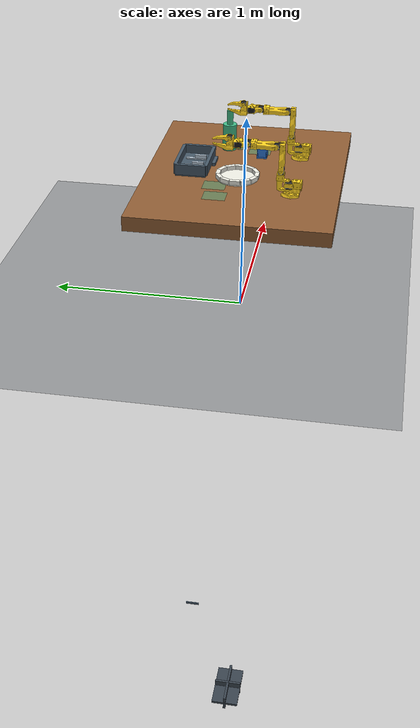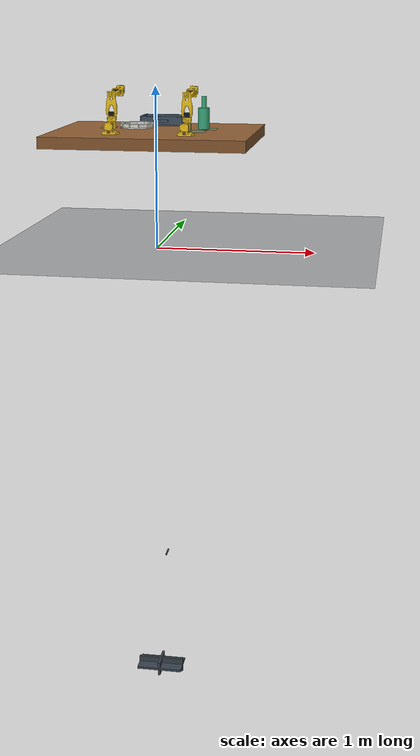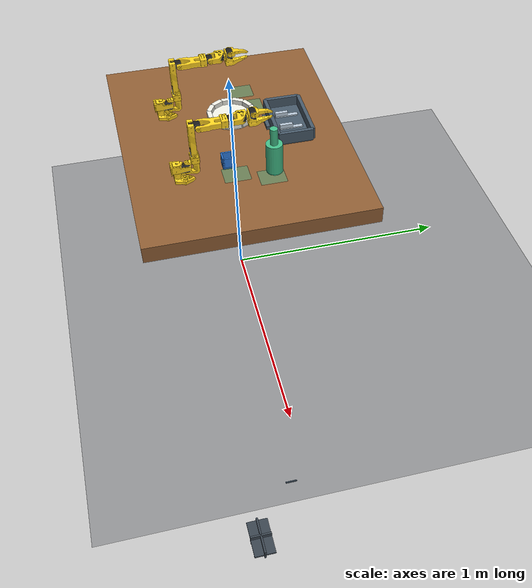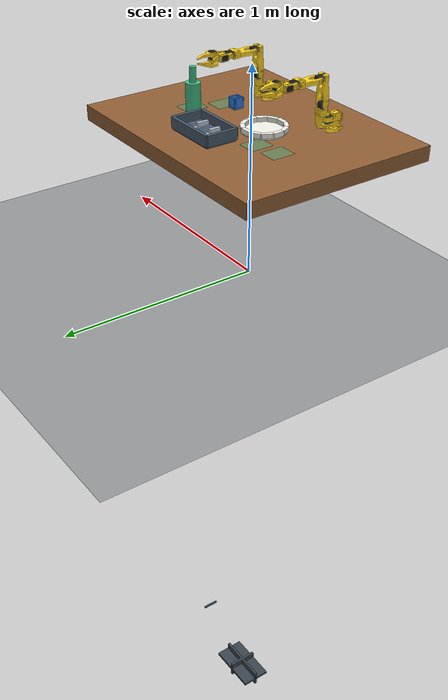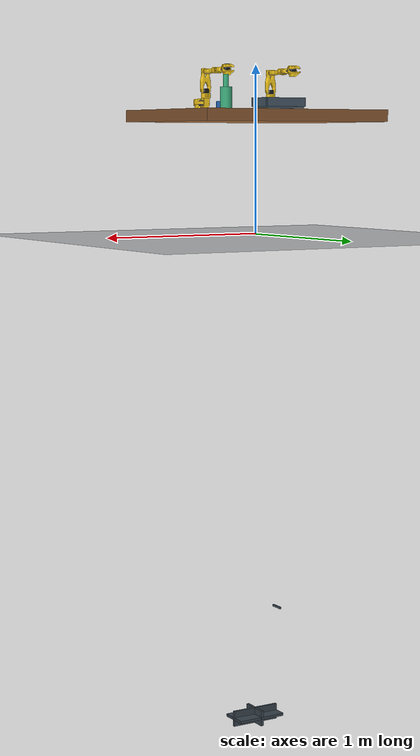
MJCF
<?xml version='1.0' encoding='utf-8'?>
<mujoco model="dual_so101_dinner_table">
  <compiler angle="radian" meshdir="../vendor/so101/assets" autolimits="true" />
  <option timestep="0.002" integrator="implicitfast" cone="elliptic" impratio="10" solver="Newton" noslip_iterations="3" />
  <visual>
    <global offwidth="1280" offheight="960" />
  </visual>
  <default>
    <default class="so101_new_calib">
      <joint damping="1" frictionloss="0.1" armature="0.005" />
      <position kp="50" />
      <default class="visual">
        <geom type="mesh" contype="0" conaffinity="0" group="2" />
      </default>
      <default class="collision">
        <geom group="3" />
      </default>
    </default>
  </default>
  <default>
    <default class="sts3215">
      <geom contype="0" conaffinity="0" />
      <joint damping="0.60" frictionloss="0.052" armature="0.028" />
      <position kp="998.22" kv="2.731" forcerange="-2.94 2.94" />
    </default>
    <default class="backlash">
      <joint damping="0.01" frictionloss="0" armature="0.01" limited="true" range="-0.008726646259971648 0.008726646259971648" />
    </default>
  </default>
  <asset>
    <mesh file="waveshare_mounting_plate_so101_v2.stl" />
    <mesh file="sts3215_03a_v1.stl" />
    <mesh file="motor_holder_so101_base_v1.stl" />
    <mesh file="wrist_roll_follower_so101_v1.stl" />
    <mesh file="moving_jaw_so101_v1.stl" />
    <mesh file="base_motor_holder_so101_v1.stl" />
    <mesh file="upper_arm_so101_v1.stl" />
    <mesh file="wrist_roll_pitch_so101_v2.stl" />
    <mesh file="under_arm_so101_v1.stl" />
    <mesh file="rotation_pitch_so101_v1.stl" />
    <mesh file="motor_holder_so101_wrist_v1.stl" />
    <mesh file="sts3215_03a_no_horn_v1.stl" />
    <mesh file="base_so101_v2.stl" />
    <material name="base_motor_holder_so101_v1_material" rgba="1 0.82 0.12 1" />
    <material name="base_so101_v2_material" rgba="1 0.82 0.12 1" />
    <material name="sts3215_03a_v1_material" rgba="0.1 0.1 0.1 1" />
    <material name="waveshare_mounting_plate_so101_v2_material" rgba="1 0.82 0.12 1" />
    <material name="motor_holder_so101_base_v1_material" rgba="1 0.82 0.12 1" />
    <material name="rotation_pitch_so101_v1_material" rgba="1 0.82 0.12 1" />
    <material name="upper_arm_so101_v1_material" rgba="1 0.82 0.12 1" />
    <material name="under_arm_so101_v1_material" rgba="1 0.82 0.12 1" />
    <material name="motor_holder_so101_wrist_v1_material" rgba="1 0.82 0.12 1" />
    <material name="sts3215_03a_no_horn_v1_material" rgba="0.1 0.1 0.1 1.0" />
    <material name="wrist_roll_pitch_so101_v2_material" rgba="1 0.82 0.12 1" />
    <material name="wrist_roll_follower_so101_v1_material" rgba="1 0.82 0.12 1" />
    <material name="moving_jaw_so101_v1_material" rgba="1 0.82 0.12 1" />
  </asset>
  <worldbody>
    <light name="key" pos="0 -0.3 2.2" dir="0 0 -1" directional="true" />
    <body name="lookat" pos="0 0 0.94" />
    <camera name="overview" pos="0.95 -1.2 1.65" xyaxes="0.7840458244617613 0.6207029443655612 -0.0 -0.28753026613805027 0.36319612564806336 0.8862363795110297" fovy="48" />
    <camera name="top" pos="0 0 2.45" quat="1 0 0 0" fovy="48" />
    <light pos="-1 -1 2" dir="0 0 -1" diffuse="0.5 0.5 0.5" />
    <geom name="floor" type="plane" size="2 2 0.05" rgba="0.12 0.14 0.17 1" />
    <geom name="table" type="box" pos="0 0 0.70" size="0.62 0.48 0.035" rgba="0.55 0.36 0.20 1" friction="1 0.01 0.001" />
    <body name="left_base" pos="-0.23 -0.27 0.735" quat="0.7071068 0 0 0.7071068" childclass="so101_new_calib">
      <inertial pos="0.0137179 -5.19711e-05 0.0334843" mass="0.147" fullinertia="0.000114686 0.000136117 0.000130364 -4.59787e-07 4.97151e-06 9.75275e-08" />
      <geom type="mesh" class="visual" pos="-0.00636471 -9.94414e-05 -0.0024" quat="0.5 0.5 0.5 0.5" mesh="base_motor_holder_so101_v1" material="base_motor_holder_so101_v1_material" />
      <geom type="mesh" class="visual" pos="-0.00636471 -8.97657e-09 -0.0024" quat="0.5 0.5 0.5 0.5" mesh="base_so101_v2" material="base_so101_v2_material" />
      <geom type="mesh" class="visual" pos="0.0263353 -8.97657e-09 0.0437" quat="1 -2.85511e-16 -9.64433e-17 6.12908e-16" mesh="sts3215_03a_v1" material="sts3215_03a_v1_material" />
      <geom type="mesh" class="visual" pos="-0.0309827 -0.000199441 0.0474" quat="0.5 0.5 0.5 0.5" mesh="waveshare_mounting_plate_so101_v2" material="waveshare_mounting_plate_so101_v2_material" />
      <site group="3" name="left_baseframe" pos="8.67362e-19 9.55596e-18 3.46945e-18" quat="1 -8.17396e-19 3.78392e-17 2.22045e-16" />
      <body name="left_shoulder" pos="0.0388353 -8.97657e-09 0.0624" quat="3.56167e-16 1.22818e-15 -1 -4.14635e-16">
        <joint axis="0 0 1" name="left_shoulder_pan" type="hinge" range="-1.9198621771937616 1.9198621771937634" class="sts3215" />
        <inertial pos="-0.0307604 -1.66727e-05 -0.0252713" mass="0.100006" fullinertia="8.3759e-05 8.10403e-05 2.39783e-05 7.55525e-08 -1.16342e-06 1.54663e-07" />
        <geom type="mesh" class="visual" pos="-0.0303992 0.000422241 -0.0417" quat="0.5 0.5 0.5 -0.5" mesh="sts3215_03a_v1" material="sts3215_03a_v1_material" />
        <geom type="mesh" class="collision" pos="-0.0303992 0.000422241 -0.0417" quat="0.5 0.5 0.5 -0.5" mesh="sts3215_03a_v1" material="sts3215_03a_v1_material" />
        <geom type="mesh" class="visual" pos="-0.0675992 -0.000177759 0.0158499" quat="0.5 0.5 -0.5 0.5" mesh="motor_holder_so101_base_v1" material="motor_holder_so101_base_v1_material" />
        <geom type="mesh" class="collision" pos="-0.0675992 -0.000177759 0.0158499" quat="0.5 0.5 -0.5 0.5" mesh="motor_holder_so101_base_v1" material="motor_holder_so101_base_v1_material" />
        <geom type="mesh" class="visual" pos="0.0122008 2.22413e-05 0.0464" quat="0.707107 -0.707107 -0 8.3163e-34" mesh="rotation_pitch_so101_v1" material="rotation_pitch_so101_v1_material" />
        <geom type="mesh" class="collision" pos="0.0122008 2.22413e-05 0.0464" quat="0.707107 -0.707107 -0 8.3163e-34" mesh="rotation_pitch_so101_v1" material="rotation_pitch_so101_v1_material" />
        <body name="left_upper_arm" pos="-0.0303992 -0.0182778 -0.0542" quat="0.5 -0.5 -0.5 -0.5">
          <joint axis="0 0 1" name="left_shoulder_lift" type="hinge" range="-1.7453292519943224 1.7453292519943366" class="sts3215" />
          <inertial pos="-0.0898471 -0.00838224 0.0184089" mass="0.103" fullinertia="4.08002e-05 0.000147318 0.000142487 -1.97819e-05 -4.03016e-08 8.97326e-09" />
          <geom type="mesh" class="visual" pos="-0.11257 -0.0155 0.0187" quat="4.56308e-16 -0.707107 0.707107 -1.37383e-16" mesh="sts3215_03a_v1" material="sts3215_03a_v1_material" />
          <geom type="mesh" class="collision" pos="-0.11257 -0.0155 0.0187" quat="4.56308e-16 -0.707107 0.707107 -1.37383e-16" mesh="sts3215_03a_v1" material="sts3215_03a_v1_material" />
          <geom type="mesh" class="visual" pos="-0.065085 0.012 0.0182" quat="0 1 0 0" mesh="upper_arm_so101_v1" material="upper_arm_so101_v1_material" />
          <geom type="mesh" class="collision" pos="-0.065085 0.012 0.0182" quat="0 1 0 0" mesh="upper_arm_so101_v1" material="upper_arm_so101_v1_material" />
          <body name="left_lower_arm" pos="-0.11257 -0.028 1.73763e-16" quat="0.707107 -5.98613e-17 -2.58051e-17 0.707107">
            <joint axis="0 0 1" name="left_elbow_flex" type="hinge" range="-1.69 1.69" class="sts3215" />
            <inertial pos="-0.0980701 0.00324376 0.0182831" mass="0.104" fullinertia="2.87438e-05 0.000159844 0.00014529 7.41152e-06 1.26409e-06 -4.90188e-08" />
            <geom type="mesh" class="visual" pos="-0.0648499 -0.032 0.0182" quat="0 1 0 0" mesh="under_arm_so101_v1" material="under_arm_so101_v1_material" />
            <geom type="mesh" class="collision" pos="-0.0648499 -0.032 0.0182" quat="0 1 0 0" mesh="under_arm_so101_v1" material="under_arm_so101_v1_material" />
            <geom type="mesh" class="visual" pos="-0.0648499 -0.032 0.018" quat="3.92687e-16 -1 -1.9186e-15 -6.38378e-16" mesh="motor_holder_so101_wrist_v1" material="motor_holder_so101_wrist_v1_material" />
            <geom type="mesh" class="collision" pos="-0.0648499 -0.032 0.018" quat="3.92687e-16 -1 -1.9186e-15 -6.38378e-16" mesh="motor_holder_so101_wrist_v1" material="motor_holder_so101_wrist_v1_material" />
            <geom type="mesh" class="visual" pos="-0.1224 0.0052 0.0187" quat="7.21645e-16 1.56949e-15 1 -3.33067e-16" mesh="sts3215_03a_v1" material="sts3215_03a_v1_material" />
            <geom type="mesh" class="collision" pos="-0.1224 0.0052 0.0187" quat="7.21645e-16 1.56949e-15 1 -3.33067e-16" mesh="sts3215_03a_v1" material="sts3215_03a_v1_material" />
            <body name="left_wrist" pos="-0.1349 0.0052 3.62355e-17" quat="0.707107 9.58722e-16 -7.51313e-16 -0.707107">
              <joint axis="0 0 1" name="left_wrist_flex" type="hinge" range="-1.6580628494556928 1.6580627293335335" class="sts3215" />
              <inertial pos="-0.000103312 -0.0386143 0.0281156" mass="0.079" fullinertia="3.68263e-05 2.5391e-05 2.1e-05 1.7893e-08 -5.28128e-08 3.6412e-06" />
              <geom type="mesh" class="visual" pos="8.32667e-17 -0.0424 0.0306" quat="0.5 0.5 0.5 -0.5" mesh="sts3215_03a_no_horn_v1" material="sts3215_03a_no_horn_v1_material" />
              <geom type="mesh" class="collision" pos="8.32667e-17 -0.0424 0.0306" quat="0.5 0.5 0.5 -0.5" mesh="sts3215_03a_no_horn_v1" material="sts3215_03a_no_horn_v1_material" />
              <geom type="mesh" class="visual" pos="0 -0.028 0.0181" quat="0.5 -0.5 -0.5 -0.5" mesh="wrist_roll_pitch_so101_v2" material="wrist_roll_pitch_so101_v2_material" />
              <geom type="mesh" class="collision" pos="0 -0.028 0.0181" quat="0.5 -0.5 -0.5 -0.5" mesh="wrist_roll_pitch_so101_v2" material="wrist_roll_pitch_so101_v2_material" />
              <body name="left_gripper" pos="5.55112e-17 -0.0611 0.0181" quat="0.0172091 -0.0172091 0.706897 0.706897">
                <joint axis="0 0 1" name="left_wrist_roll" type="hinge" range="-2.7438472969992493 2.841206309382605" class="sts3215" />
                <inertial pos="0.000213627 0.000245138 -0.025187" mass="0.087" fullinertia="2.75087e-05 4.33657e-05 3.45059e-05 -3.35241e-07 -5.7352e-06 -5.17847e-08" />
                <geom type="mesh" class="visual" pos="0.0077 0.0001 -0.0234" quat="0.707107 -0.707107 1.66015e-15 6.45094e-15" mesh="sts3215_03a_v1" material="sts3215_03a_v1_material" />
                <geom type="mesh" class="collision" pos="0.0077 0.0001 -0.0234" quat="0.707107 -0.707107 1.66015e-15 6.45094e-15" mesh="sts3215_03a_v1" material="sts3215_03a_v1_material" />
                <geom type="mesh" class="visual" pos="8.32667e-17 -0.000218214 0.000949706" quat="0 1 0 0" mesh="wrist_roll_follower_so101_v1" material="wrist_roll_follower_so101_v1_material" />
                <site group="3" name="left_gripperframe" pos="-0.0079 -0.000218121 -0.0981274" quat="0.707107 -0 0.707107 -2.37788e-17" />
                <body name="left_moving_jaw_so101_v1" pos="0.0202 0.0188 -0.0234" quat="0.707107 0.707107 -1.85362e-08 1.85362e-08">
                  <joint axis="0 0 1" name="left_gripper" type="hinge" range="-0.17453297762778586 1.7453291995659765" class="sts3215" />
                  <inertial pos="-0.00157495 -0.0300244 0.0192755" mass="0.012" fullinertia="6.61427e-06 1.89032e-06 5.28738e-06 -3.19807e-07 -5.90717e-09 -1.09945e-07" />
                  <geom type="mesh" class="visual" pos="-5.55112e-17 -5.55112e-17 0.0189" quat="1 -0 3.00524e-16 -2.00834e-17" mesh="moving_jaw_so101_v1" material="moving_jaw_so101_v1_material" />
                  <geom name="left_moving_pad" type="box" class="collision" pos="-0.0058 -0.065 0.0189" size="0.0065 0.017 0.0075" friction="1 0.01 0.001" condim="4" rgba="0.2 0.2 0.2 0.35" />
                  <geom name="left_moving_neck" type="box" class="collision" pos="-0.003 -0.030 0.0189" size="0.009 0.020 0.010" friction="1 0.01 0.001" condim="4" rgba="0.2 0.2 0.2 0.35" />
                </body>
                <geom name="left_fixed_pad" type="box" class="collision" pos="-0.0139 -0.000218 -0.0884" size="0.006 0.0075 0.016" friction="1 0.01 0.001" condim="4" rgba="0.2 0.2 0.2 0.35" />
                <geom name="left_fixed_neck" type="box" class="collision" pos="-0.021 0 -0.052" size="0.006 0.010 0.024" friction="1 0.01 0.001" condim="4" rgba="0.2 0.2 0.2 0.35" />
                <geom name="left_palm" type="box" class="collision" pos="0 0 -0.017" size="0.030 0.024 0.018" friction="1 0.01 0.001" condim="4" rgba="0.2 0.2 0.2 0.35" />
              </body>
            </body>
          </body>
        </body>
      </body>
    </body>
    <body name="right_base" pos="0.23 -0.27 0.735" quat="0.7071068 0 0 0.7071068" childclass="so101_new_calib">
      <inertial pos="0.0137179 -5.19711e-05 0.0334843" mass="0.147" fullinertia="0.000114686 0.000136117 0.000130364 -4.59787e-07 4.97151e-06 9.75275e-08" />
      <geom type="mesh" class="visual" pos="-0.00636471 -9.94414e-05 -0.0024" quat="0.5 0.5 0.5 0.5" mesh="base_motor_holder_so101_v1" material="base_motor_holder_so101_v1_material" />
      <geom type="mesh" class="visual" pos="-0.00636471 -8.97657e-09 -0.0024" quat="0.5 0.5 0.5 0.5" mesh="base_so101_v2" material="base_so101_v2_material" />
      <geom type="mesh" class="visual" pos="0.0263353 -8.97657e-09 0.0437" quat="1 -2.85511e-16 -9.64433e-17 6.12908e-16" mesh="sts3215_03a_v1" material="sts3215_03a_v1_material" />
      <geom type="mesh" class="visual" pos="-0.0309827 -0.000199441 0.0474" quat="0.5 0.5 0.5 0.5" mesh="waveshare_mounting_plate_so101_v2" material="waveshare_mounting_plate_so101_v2_material" />
      <site group="3" name="right_baseframe" pos="8.67362e-19 9.55596e-18 3.46945e-18" quat="1 -8.17396e-19 3.78392e-17 2.22045e-16" />
      <body name="right_shoulder" pos="0.0388353 -8.97657e-09 0.0624" quat="3.56167e-16 1.22818e-15 -1 -4.14635e-16">
        <joint axis="0 0 1" name="right_shoulder_pan" type="hinge" range="-1.9198621771937616 1.9198621771937634" class="sts3215" />
        <inertial pos="-0.0307604 -1.66727e-05 -0.0252713" mass="0.100006" fullinertia="8.3759e-05 8.10403e-05 2.39783e-05 7.55525e-08 -1.16342e-06 1.54663e-07" />
        <geom type="mesh" class="visual" pos="-0.0303992 0.000422241 -0.0417" quat="0.5 0.5 0.5 -0.5" mesh="sts3215_03a_v1" material="sts3215_03a_v1_material" />
        <geom type="mesh" class="collision" pos="-0.0303992 0.000422241 -0.0417" quat="0.5 0.5 0.5 -0.5" mesh="sts3215_03a_v1" material="sts3215_03a_v1_material" />
        <geom type="mesh" class="visual" pos="-0.0675992 -0.000177759 0.0158499" quat="0.5 0.5 -0.5 0.5" mesh="motor_holder_so101_base_v1" material="motor_holder_so101_base_v1_material" />
        <geom type="mesh" class="collision" pos="-0.0675992 -0.000177759 0.0158499" quat="0.5 0.5 -0.5 0.5" mesh="motor_holder_so101_base_v1" material="motor_holder_so101_base_v1_material" />
        <geom type="mesh" class="visual" pos="0.0122008 2.22413e-05 0.0464" quat="0.707107 -0.707107 -0 8.3163e-34" mesh="rotation_pitch_so101_v1" material="rotation_pitch_so101_v1_material" />
        <geom type="mesh" class="collision" pos="0.0122008 2.22413e-05 0.0464" quat="0.707107 -0.707107 -0 8.3163e-34" mesh="rotation_pitch_so101_v1" material="rotation_pitch_so101_v1_material" />
        <body name="right_upper_arm" pos="-0.0303992 -0.0182778 -0.0542" quat="0.5 -0.5 -0.5 -0.5">
          <joint axis="0 0 1" name="right_shoulder_lift" type="hinge" range="-1.7453292519943224 1.7453292519943366" class="sts3215" />
          <inertial pos="-0.0898471 -0.00838224 0.0184089" mass="0.103" fullinertia="4.08002e-05 0.000147318 0.000142487 -1.97819e-05 -4.03016e-08 8.97326e-09" />
          <geom type="mesh" class="visual" pos="-0.11257 -0.0155 0.0187" quat="4.56308e-16 -0.707107 0.707107 -1.37383e-16" mesh="sts3215_03a_v1" material="sts3215_03a_v1_material" />
          <geom type="mesh" class="collision" pos="-0.11257 -0.0155 0.0187" quat="4.56308e-16 -0.707107 0.707107 -1.37383e-16" mesh="sts3215_03a_v1" material="sts3215_03a_v1_material" />
          <geom type="mesh" class="visual" pos="-0.065085 0.012 0.0182" quat="0 1 0 0" mesh="upper_arm_so101_v1" material="upper_arm_so101_v1_material" />
          <geom type="mesh" class="collision" pos="-0.065085 0.012 0.0182" quat="0 1 0 0" mesh="upper_arm_so101_v1" material="upper_arm_so101_v1_material" />
          <body name="right_lower_arm" pos="-0.11257 -0.028 1.73763e-16" quat="0.707107 -5.98613e-17 -2.58051e-17 0.707107">
            <joint axis="0 0 1" name="right_elbow_flex" type="hinge" range="-1.69 1.69" class="sts3215" />
            <inertial pos="-0.0980701 0.00324376 0.0182831" mass="0.104" fullinertia="2.87438e-05 0.000159844 0.00014529 7.41152e-06 1.26409e-06 -4.90188e-08" />
            <geom type="mesh" class="visual" pos="-0.0648499 -0.032 0.0182" quat="0 1 0 0" mesh="under_arm_so101_v1" material="under_arm_so101_v1_material" />
            <geom type="mesh" class="collision" pos="-0.0648499 -0.032 0.0182" quat="0 1 0 0" mesh="under_arm_so101_v1" material="under_arm_so101_v1_material" />
            <geom type="mesh" class="visual" pos="-0.0648499 -0.032 0.018" quat="3.92687e-16 -1 -1.9186e-15 -6.38378e-16" mesh="motor_holder_so101_wrist_v1" material="motor_holder_so101_wrist_v1_material" />
            <geom type="mesh" class="collision" pos="-0.0648499 -0.032 0.018" quat="3.92687e-16 -1 -1.9186e-15 -6.38378e-16" mesh="motor_holder_so101_wrist_v1" material="motor_holder_so101_wrist_v1_material" />
            <geom type="mesh" class="visual" pos="-0.1224 0.0052 0.0187" quat="7.21645e-16 1.56949e-15 1 -3.33067e-16" mesh="sts3215_03a_v1" material="sts3215_03a_v1_material" />
            <geom type="mesh" class="collision" pos="-0.1224 0.0052 0.0187" quat="7.21645e-16 1.56949e-15 1 -3.33067e-16" mesh="sts3215_03a_v1" material="sts3215_03a_v1_material" />
            <body name="right_wrist" pos="-0.1349 0.0052 3.62355e-17" quat="0.707107 9.58722e-16 -7.51313e-16 -0.707107">
              <joint axis="0 0 1" name="right_wrist_flex" type="hinge" range="-1.6580628494556928 1.6580627293335335" class="sts3215" />
              <inertial pos="-0.000103312 -0.0386143 0.0281156" mass="0.079" fullinertia="3.68263e-05 2.5391e-05 2.1e-05 1.7893e-08 -5.28128e-08 3.6412e-06" />
              <geom type="mesh" class="visual" pos="8.32667e-17 -0.0424 0.0306" quat="0.5 0.5 0.5 -0.5" mesh="sts3215_03a_no_horn_v1" material="sts3215_03a_no_horn_v1_material" />
              <geom type="mesh" class="collision" pos="8.32667e-17 -0.0424 0.0306" quat="0.5 0.5 0.5 -0.5" mesh="sts3215_03a_no_horn_v1" material="sts3215_03a_no_horn_v1_material" />
              <geom type="mesh" class="visual" pos="0 -0.028 0.0181" quat="0.5 -0.5 -0.5 -0.5" mesh="wrist_roll_pitch_so101_v2" material="wrist_roll_pitch_so101_v2_material" />
              <geom type="mesh" class="collision" pos="0 -0.028 0.0181" quat="0.5 -0.5 -0.5 -0.5" mesh="wrist_roll_pitch_so101_v2" material="wrist_roll_pitch_so101_v2_material" />
              <body name="right_gripper" pos="5.55112e-17 -0.0611 0.0181" quat="0.0172091 -0.0172091 0.706897 0.706897">
                <joint axis="0 0 1" name="right_wrist_roll" type="hinge" range="-2.7438472969992493 2.841206309382605" class="sts3215" />
                <inertial pos="0.000213627 0.000245138 -0.025187" mass="0.087" fullinertia="2.75087e-05 4.33657e-05 3.45059e-05 -3.35241e-07 -5.7352e-06 -5.17847e-08" />
                <geom type="mesh" class="visual" pos="0.0077 0.0001 -0.0234" quat="0.707107 -0.707107 1.66015e-15 6.45094e-15" mesh="sts3215_03a_v1" material="sts3215_03a_v1_material" />
                <geom type="mesh" class="collision" pos="0.0077 0.0001 -0.0234" quat="0.707107 -0.707107 1.66015e-15 6.45094e-15" mesh="sts3215_03a_v1" material="sts3215_03a_v1_material" />
                <geom type="mesh" class="visual" pos="8.32667e-17 -0.000218214 0.000949706" quat="0 1 0 0" mesh="wrist_roll_follower_so101_v1" material="wrist_roll_follower_so101_v1_material" />
                <site group="3" name="right_gripperframe" pos="-0.0079 -0.000218121 -0.0981274" quat="0.707107 -0 0.707107 -2.37788e-17" />
                <body name="right_moving_jaw_so101_v1" pos="0.0202 0.0188 -0.0234" quat="0.707107 0.707107 -1.85362e-08 1.85362e-08">
                  <joint axis="0 0 1" name="right_gripper" type="hinge" range="-0.17453297762778586 1.7453291995659765" class="sts3215" />
                  <inertial pos="-0.00157495 -0.0300244 0.0192755" mass="0.012" fullinertia="6.61427e-06 1.89032e-06 5.28738e-06 -3.19807e-07 -5.90717e-09 -1.09945e-07" />
                  <geom type="mesh" class="visual" pos="-5.55112e-17 -5.55112e-17 0.0189" quat="1 -0 3.00524e-16 -2.00834e-17" mesh="moving_jaw_so101_v1" material="moving_jaw_so101_v1_material" />
                  <geom name="right_moving_pad" type="box" class="collision" pos="-0.0058 -0.065 0.0189" size="0.0065 0.017 0.0075" friction="1 0.01 0.001" condim="4" rgba="0.2 0.2 0.2 0.35" />
                  <geom name="right_moving_neck" type="box" class="collision" pos="-0.003 -0.030 0.0189" size="0.009 0.020 0.010" friction="1 0.01 0.001" condim="4" rgba="0.2 0.2 0.2 0.35" />
                </body>
                <geom name="right_fixed_pad" type="box" class="collision" pos="-0.0139 -0.000218 -0.0884" size="0.006 0.0075 0.016" friction="1 0.01 0.001" condim="4" rgba="0.2 0.2 0.2 0.35" />
                <geom name="right_fixed_neck" type="box" class="collision" pos="-0.021 0 -0.052" size="0.006 0.010 0.024" friction="1 0.01 0.001" condim="4" rgba="0.2 0.2 0.2 0.35" />
                <geom name="right_palm" type="box" class="collision" pos="0 0 -0.017" size="0.030 0.024 0.018" friction="1 0.01 0.001" condim="4" rgba="0.2 0.2 0.2 0.35" />
              </body>
            </body>
          </body>
        </body>
      </body>
    </body>
    <body name="plate" pos="-0.12 0.02 0.752">
      <freejoint />
      <geom name="plate_geom" type="cylinder" size="0.10 0.004" rgba="0.92 0.92 0.88 1" mass="0.06" pos="0 0 0" />
      <geom name="plate_rim_0" type="box" pos="0.094 0.0 0.014" quat="1.0 0 0 0.0" size="0.010 0.025 0.010" mass="0.005" rgba="0.92 0.92 0.88 1" condim="4" friction="1 0.01 0.001" />
      <geom name="plate_rim_1" type="box" pos="0.08140638795573724 0.04699999999999999 0.014" quat="0.9659258262890683 0 0 0.25881904510252074" size="0.010 0.025 0.010" mass="0.005" rgba="0.92 0.92 0.88 1" condim="4" friction="1 0.01 0.001" />
      <geom name="plate_rim_2" type="box" pos="0.047000000000000014 0.08140638795573722 0.014" quat="0.8660254037844387 0 0 0.49999999999999994" size="0.010 0.025 0.010" mass="0.005" rgba="0.92 0.92 0.88 1" condim="4" friction="1 0.01 0.001" />
      <geom name="plate_rim_3" type="box" pos="5.7558399559925604e-18 0.094 0.014" quat="0.7071067811865476 0 0 0.7071067811865475" size="0.010 0.025 0.010" mass="0.005" rgba="0.92 0.92 0.88 1" condim="4" friction="1 0.01 0.001" />
      <geom name="plate_rim_4" type="box" pos="-0.046999999999999986 0.08140638795573724 0.014" quat="0.5000000000000001 0 0 0.8660254037844386" size="0.010 0.025 0.010" mass="0.005" rgba="0.92 0.92 0.88 1" condim="4" friction="1 0.01 0.001" />
      <geom name="plate_rim_5" type="box" pos="-0.08140638795573724 0.04699999999999999 0.014" quat="0.25881904510252074 0 0 0.9659258262890683" size="0.010 0.025 0.010" mass="0.005" rgba="0.92 0.92 0.88 1" condim="4" friction="1 0.01 0.001" />
      <geom name="plate_rim_6" type="box" pos="-0.094 1.1511679911985121e-17 0.014" quat="6.123233995736766e-17 0 0 1.0" size="0.010 0.025 0.010" mass="0.005" rgba="0.92 0.92 0.88 1" condim="4" friction="1 0.01 0.001" />
      <geom name="plate_rim_7" type="box" pos="-0.08140638795573725 -0.04699999999999998 0.014" quat="-0.25881904510252063 0 0 0.9659258262890683" size="0.010 0.025 0.010" mass="0.005" rgba="0.92 0.92 0.88 1" condim="4" friction="1 0.01 0.001" />
      <geom name="plate_rim_8" type="box" pos="-0.04700000000000004 -0.08140638795573721 0.014" quat="-0.49999999999999983 0 0 0.8660254037844387" size="0.010 0.025 0.010" mass="0.005" rgba="0.92 0.92 0.88 1" condim="4" friction="1 0.01 0.001" />
      <geom name="plate_rim_9" type="box" pos="-1.726751986797768e-17 -0.094 0.014" quat="-0.7071067811865475 0 0 0.7071067811865476" size="0.010 0.025 0.010" mass="0.005" rgba="0.92 0.92 0.88 1" condim="4" friction="1 0.01 0.001" />
      <geom name="plate_rim_10" type="box" pos="0.047000000000000014 -0.08140638795573722 0.014" quat="-0.8660254037844387 0 0 0.49999999999999994" size="0.010 0.025 0.010" mass="0.005" rgba="0.92 0.92 0.88 1" condim="4" friction="1 0.01 0.001" />
      <geom name="plate_rim_11" type="box" pos="0.08140638795573721 -0.04700000000000004 0.014" quat="-0.9659258262890682 0 0 0.258819045102521" size="0.010 0.025 0.010" mass="0.005" rgba="0.92 0.92 0.88 1" condim="4" friction="1 0.01 0.001" />
    </body>
    <body name="mug" pos="0.20 -0.06 0.7603">
      <freejoint />
      <geom name="mug_geom" type="box" size="0.025 0.025 0.004" rgba="0.18 0.48 0.86 1" mass="0.012" pos="0 0 -0.021" />
      <geom name="mug_wall_0" type="box" pos="0.022 0.0 0.004" quat="1.0 0 0 0.0" size="0.003 0.025 0.021" mass="0.012" rgba="0.18 0.48 0.86 1" condim="4" friction="1 0.01 0.001" />
      <geom name="mug_wall_1" type="box" pos="1.3471114790620884e-18 0.022 0.004" quat="0.7071067811865476 0 0 0.7071067811865475" size="0.003 0.025 0.021" mass="0.012" rgba="0.18 0.48 0.86 1" condim="4" friction="1 0.01 0.001" />
      <geom name="mug_wall_2" type="box" pos="-0.022 2.694222958124177e-18 0.004" quat="6.123233995736766e-17 0 0 1.0" size="0.003 0.025 0.021" mass="0.012" rgba="0.18 0.48 0.86 1" condim="4" friction="1 0.01 0.001" />
      <geom name="mug_wall_3" type="box" pos="-4.041334437186265e-18 -0.022 0.004" quat="-0.7071067811865475 0 0 0.7071067811865476" size="0.003 0.025 0.021" mass="0.012" rgba="0.18 0.48 0.86 1" condim="4" friction="1 0.01 0.001" />
    </body>
    <body name="bottle" pos="0.28 0.12 0.800">
      <freejoint />
      <geom name="bottle_geom" type="cylinder" size="0.035 0.065" rgba="0.25 0.72 0.52 1" mass="0.10" />
      <geom name="bottle_neck" type="cylinder" pos="0 0 0.100" size="0.016 0.035" mass="0.02" rgba="0.25 0.72 0.52 1" condim="4" friction="1 0.01 0.001" />
    </body>
    <body name="drawer" pos="0 0.25 0.752">
      <joint name="drawer_slide" type="slide" axis="0 -1 0" range="0 0.12" damping="4" />
      <geom name="drawer_floor" type="box" pos="0 0 0" size="0.13 0.075 0.009" mass="0.06" rgba="0.27 0.34 0.4 1" />
      <geom name="drawer_front" type="box" pos="0 -0.075 0.025" size="0.13 0.008 0.025" mass="0.06" rgba="0.27 0.34 0.4 1" />
      <geom name="drawer_back" type="box" pos="0 0.075 0.025" size="0.13 0.008 0.025" mass="0.06" rgba="0.27 0.34 0.4 1" />
      <geom name="drawer_left" type="box" pos="-0.13 0 0.025" size="0.008 0.075 0.025" mass="0.06" rgba="0.27 0.34 0.4 1" />
      <geom name="drawer_right" type="box" pos="0.13 0 0.025" size="0.008 0.075 0.025" mass="0.06" rgba="0.27 0.34 0.4 1" />
      <geom name="drawer_handle" type="box" pos="0 -0.1 0.025" size="0.045 0.008 0.008" mass="0.06" rgba="0.27 0.34 0.4 1" />
      <geom name="drawer_mount_left" type="box" pos="0 0 -3" size="0.004 0.041 0.006" mass="0" contype="0" conaffinity="0" rgba="0.27 0.34 0.4 1" />
      <geom name="drawer_mount_right" type="box" pos="0 0 -3" size="0.004 0.041 0.006" mass="0" contype="0" conaffinity="0" rgba="0.27 0.34 0.4 1" />
    </body>
    <body name="fork" pos="-0.045 0.25 0.766">
      <freejoint />
      <geom name="fork_geom" type="box" size="0.008 0.05 0.003" mass="0.015" rgba="0.72 0.78 0.84 1" />
      <geom name="fork_handle" type="box" pos="0 -0.022 0.011" size="0.007 0.028 0.008" mass="0.010" rgba="0.72 0.78 0.84 1" condim="4" friction="1 0.01 0.001" />
    </body>
    <body name="spoon" pos="0.045 0.25 0.766">
      <freejoint />
      <geom name="spoon_geom" type="box" size="0.008 0.05 0.003" mass="0.015" rgba="0.72 0.78 0.84 1" />
      <geom name="spoon_handle" type="box" pos="0 -0.022 0.011" size="0.007 0.028 0.008" mass="0.010" rgba="0.72 0.78 0.84 1" condim="4" friction="1 0.01 0.001" />
    </body>
    <geom name="cabinet_left" type="box" pos="0 0 -3" size="0.008 0.087 0.048" rgba="0.22 0.26 0.30 1" />
    <geom name="cabinet_right" type="box" pos="0 0 -3" size="0.008 0.087 0.048" rgba="0.22 0.26 0.30 1" />
    <geom name="cabinet_back" type="box" pos="0 0 -3" size="0.155 0.008 0.048" rgba="0.22 0.26 0.30 1" />
    <geom name="cabinet_top" type="box" pos="0 0 -3" size="0.155 0.087 0.008" rgba="0.22 0.26 0.30 1" />
    <site name="plate_mat" type="box" pos="-0.2 0.12 0.737" size="0.045 0.055 0.001" rgba="0.1 0.8 0.65 0.3" />
    <site name="mug_mat" type="box" pos="0.27 -0.04 0.737" size="0.045 0.055 0.001" rgba="0.1 0.8 0.65 0.3" />
    <site name="fork_mat" type="box" pos="-0.32 0.1 0.737" size="0.045 0.055 0.001" rgba="0.1 0.8 0.65 0.3" />
    <site name="spoon_mat" type="box" pos="0.32 0.1 0.737" size="0.045 0.055 0.001" rgba="0.1 0.8 0.65 0.3" />
  </worldbody>
  <actuator>
    <position class="sts3215" name="left_shoulder_pan" joint="left_shoulder_pan" forcerange="-3.35 3.35" ctrlrange="-1.91986 1.91986" />
    <position class="sts3215" name="left_shoulder_lift" joint="left_shoulder_lift" forcerange="-3.35 3.35" ctrlrange="-1.74533 1.74533" />
    <position class="sts3215" name="left_elbow_flex" joint="left_elbow_flex" forcerange="-3.35 3.35" ctrlrange="-1.69 1.69" />
    <position class="sts3215" name="left_wrist_flex" joint="left_wrist_flex" forcerange="-3.35 3.35" ctrlrange="-1.65806 1.65806" />
    <position class="sts3215" name="left_wrist_roll" joint="left_wrist_roll" forcerange="-3.35 3.35" ctrlrange="-2.74385 2.84121" />
    <position class="sts3215" name="left_gripper" joint="left_gripper" forcerange="-3.35 3.35" ctrlrange="-0.17453 1.74533" />
    <position class="sts3215" name="right_shoulder_pan" joint="right_shoulder_pan" forcerange="-3.35 3.35" ctrlrange="-1.91986 1.91986" />
    <position class="sts3215" name="right_shoulder_lift" joint="right_shoulder_lift" forcerange="-3.35 3.35" ctrlrange="-1.74533 1.74533" />
    <position class="sts3215" name="right_elbow_flex" joint="right_elbow_flex" forcerange="-3.35 3.35" ctrlrange="-1.69 1.69" />
    <position class="sts3215" name="right_wrist_flex" joint="right_wrist_flex" forcerange="-3.35 3.35" ctrlrange="-1.65806 1.65806" />
    <position class="sts3215" name="right_wrist_roll" joint="right_wrist_roll" forcerange="-3.35 3.35" ctrlrange="-2.74385 2.84121" />
    <position class="sts3215" name="right_gripper" joint="right_gripper" forcerange="-3.35 3.35" ctrlrange="-0.17453 1.74533" />
  </actuator>
  <sensor />
</mujoco>
